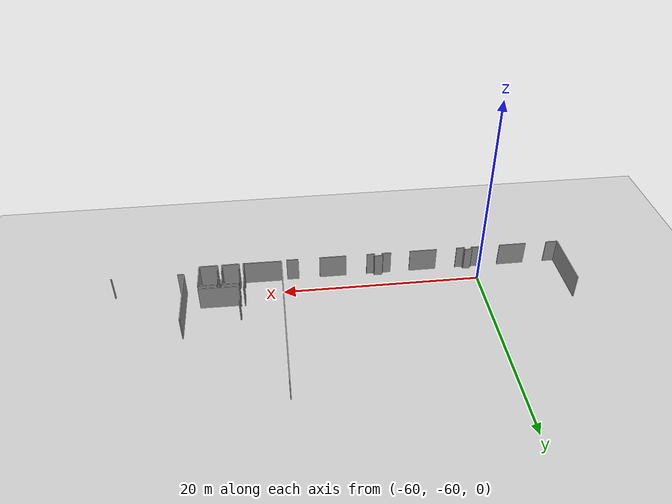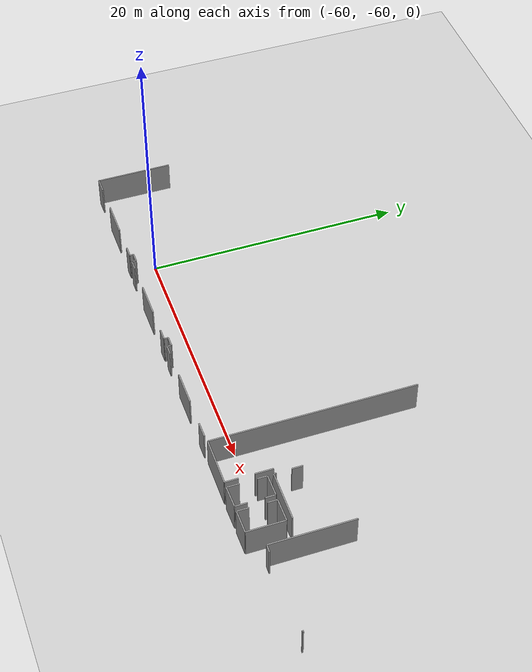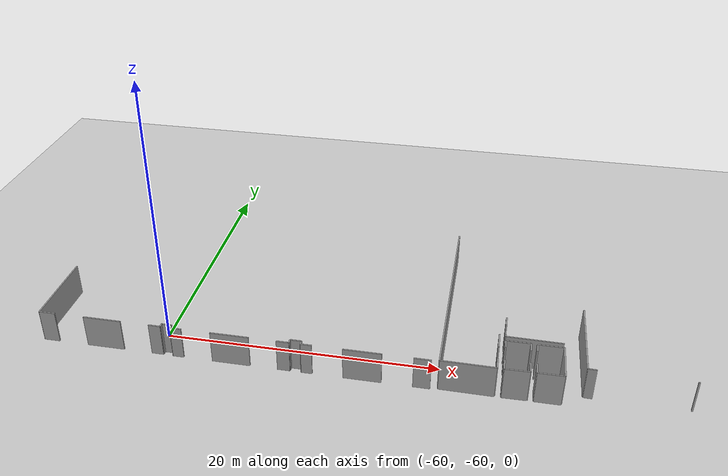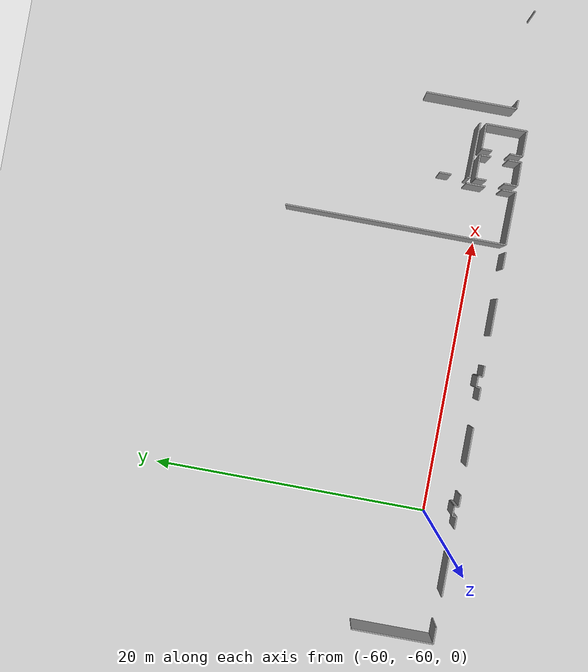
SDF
<sdf version="1.6">
 <world name="default">
  <model name="ground_plane">
   <static>1</static>
   <link name="link">
    <collision name="collision">
     <geometry><plane><normal>0 0 1</normal><size>100 100</size></plane></geometry>
     <surface><friction><ode><mu>100</mu><mu2>50</mu2></ode></friction></surface>
    </collision>
    <visual name="visual">
     <cast_shadows>0</cast_shadows>
     <geometry><plane><normal>0 0 1</normal><size>100 100</size></plane></geometry>
     <material>
      <script><uri>file://media/materials/scripts/gazebo.material</uri><name>Gazebo/Grey</name></script>
     </material>
    </visual>
   </link>
  </model>
  <model name="50036894">
   <static>1</static>
   <link name="Wall_40">
    <collision name="Wall_40_Collision">
     <geometry><box><size>1.2051049585 0.1 2.5</size></box></geometry>
     <pose>0.602552479252 0 1.25 0 0 0</pose>
    </collision>
    <visual name="Wall_40_Visual">
     <pose>0.602552479252 0 1.25 0 0 0</pose>
     <geometry><box><size>1.2051049585 0.1 2.5</size></box></geometry>
     <material>
      <script><uri>file://media/materials/scripts/gazebo.material</uri><name>Gazebo/Grey</name></script>
      <ambient>1 1 1 1</ambient>
     </material>
    </visual>
    <pose>82.3399628477 -129.412092894 0 0 0 3.14159265359</pose>
   </link>
   <link name="Wall_41">
    <collision name="Wall_41_Collision">
     <geometry><box><size>2.71351495286 0.1 2.5</size></box></geometry>
     <pose>1.35675747643 0 1.25 0 0 0</pose>
    </collision>
    <visual name="Wall_41_Visual">
     <pose>1.35675747643 0 1.25 0 0 0</pose>
     <geometry><box><size>2.71351495286 0.1 2.5</size></box></geometry>
     <material>
      <script><uri>file://media/materials/scripts/gazebo.material</uri><name>Gazebo/Grey</name></script>
      <ambient>1 1 1 1</ambient>
     </material>
    </visual>
    <pose>78.9792618986 -129.412092894 0 0 0 3.14159265359</pose>
   </link>
   <link name="Wall_42">
    <collision name="Wall_42_Collision">
     <geometry><box><size>0.786158537745 0.1 2.5</size></box></geometry>
     <pose>0.393079268873 0 1.25 0 0 0</pose>
    </collision>
    <visual name="Wall_42_Visual">
     <pose>0.393079268873 0 1.25 0 0 0</pose>
     <geometry><box><size>0.786158537745 0.1 2.5</size></box></geometry>
     <material>
      <script><uri>file://media/materials/scripts/gazebo.material</uri><name>Gazebo/Grey</name></script>
      <ambient>1 1 1 1</ambient>
     </material>
    </visual>
    <pose>74.1101509551 -129.412092894 0 0 0 3.14159265359</pose>
   </link>
   <link name="Wall_43">
    <collision name="Wall_43_Collision">
     <geometry><box><size>0.3261289934 0.1 2.5</size></box></geometry>
     <pose>0.1630644967 0 1.25 0 0 0</pose>
    </collision>
    <visual name="Wall_43_Visual">
     <pose>0.1630644967 0 1.25 0 0 0</pose>
     <geometry><box><size>0.3261289934 0.1 2.5</size></box></geometry>
     <material>
      <script><uri>file://media/materials/scripts/gazebo.material</uri><name>Gazebo/Grey</name></script>
      <ambient>1 1 1 1</ambient>
     </material>
    </visual>
    <pose>73.3239924174 -129.412092894 0 0 0 1.57079632679</pose>
   </link>
   <link name="Wall_44">
    <collision name="Wall_44_Collision">
     <geometry><box><size>0.811518490576 0.1 2.5</size></box></geometry>
     <pose>0.405759245288 0 1.25 0 0 0</pose>
    </collision>
    <visual name="Wall_44_Visual">
     <pose>0.405759245288 0 1.25 0 0 0</pose>
     <geometry><box><size>0.811518490576 0.1 2.5</size></box></geometry>
     <material>
      <script><uri>file://media/materials/scripts/gazebo.material</uri><name>Gazebo/Grey</name></script>
      <ambient>1 1 1 1</ambient>
     </material>
    </visual>
    <pose>73.3239924174 -129.0859639 0 0 0 3.14159265359</pose>
   </link>
   <link name="Wall_45">
    <collision name="Wall_45_Collision">
     <geometry><box><size>0.329679386796 0.1 2.5</size></box></geometry>
     <pose>0.164839693398 0 1.25 0 0 0</pose>
    </collision>
    <visual name="Wall_45_Visual">
     <pose>0.164839693398 0 1.25 0 0 0</pose>
     <geometry><box><size>0.329679386796 0.1 2.5</size></box></geometry>
     <material>
      <script><uri>file://media/materials/scripts/gazebo.material</uri><name>Gazebo/Grey</name></script>
      <ambient>1 1 1 1</ambient>
     </material>
    </visual>
    <pose>72.5124739268 -129.0859639 0 0 0 -1.57079632679</pose>
   </link>
   <link name="Wall_46">
    <collision name="Wall_46_Collision">
     <geometry><box><size>0.912958301898 0.1 2.5</size></box></geometry>
     <pose>0.456479150949 0 1.25 0 0 0</pose>
    </collision>
    <visual name="Wall_46_Visual">
     <pose>0.456479150949 0 1.25 0 0 0</pose>
     <geometry><box><size>0.912958301898 0.1 2.5</size></box></geometry>
     <material>
      <script><uri>file://media/materials/scripts/gazebo.material</uri><name>Gazebo/Grey</name></script>
      <ambient>1 1 1 1</ambient>
     </material>
    </visual>
    <pose>72.5124739268 -129.415643287 0 0 0 3.14159265359</pose>
   </link>
   <link name="Wall_47">
    <collision name="Wall_47_Collision">
     <geometry><box><size>2.79644199862 0.1 2.5</size></box></geometry>
     <pose>1.39822099931 0 1.25 0 0 0</pose>
    </collision>
    <visual name="Wall_47_Visual">
     <pose>1.39822099931 0 1.25 0 0 0</pose>
     <geometry><box><size>2.79644199862 0.1 2.5</size></box></geometry>
     <material>
      <script><uri>file://media/materials/scripts/gazebo.material</uri><name>Gazebo/Grey</name></script>
      <ambient>1 1 1 1</ambient>
     </material>
    </visual>
    <pose>69.6214393041 -129.415643287 0 0 0 3.14159265359</pose>
   </link>
   <link name="Wall_48">
    <collision name="Wall_48_Collision">
     <geometry><box><size>0.819633675481 0.1 2.5</size></box></geometry>
     <pose>0.409816837741 0 1.25 0 0 0</pose>
    </collision>
    <visual name="Wall_48_Visual">
     <pose>0.409816837741 0 1.25 0 0 0</pose>
     <geometry><box><size>0.819633675481 0.1 2.5</size></box></geometry>
     <material>
      <script><uri>file://media/materials/scripts/gazebo.material</uri><name>Gazebo/Grey</name></script>
      <ambient>1 1 1 1</ambient>
     </material>
    </visual>
    <pose>64.7158100286 -129.415643287 0 0 0 3.14159265359</pose>
   </link>
   <link name="Wall_49">
    <collision name="Wall_49_Collision">
     <geometry><box><size>0.328664988683 0.1 2.5</size></box></geometry>
     <pose>0.164332494342 0 1.25 0 0 0</pose>
    </collision>
    <visual name="Wall_49_Visual">
     <pose>0.164332494342 0 1.25 0 0 0</pose>
     <geometry><box><size>0.328664988683 0.1 2.5</size></box></geometry>
     <material>
      <script><uri>file://media/materials/scripts/gazebo.material</uri><name>Gazebo/Grey</name></script>
      <ambient>1 1 1 1</ambient>
     </material>
    </visual>
    <pose>63.8961763531 -129.415643287 0 0 0 1.57079632679</pose>
   </link>
   <link name="Wall_50">
    <collision name="Wall_50_Collision">
     <geometry><box><size>0.731381039631 0.1 2.5</size></box></geometry>
     <pose>0.365690519816 0 1.25 0 0 0</pose>
    </collision>
    <visual name="Wall_50_Visual">
     <pose>0.365690519816 0 1.25 0 0 0</pose>
     <geometry><box><size>0.731381039631 0.1 2.5</size></box></geometry>
     <material>
      <script><uri>file://media/materials/scripts/gazebo.material</uri><name>Gazebo/Grey</name></script>
      <ambient>1 1 1 1</ambient>
     </material>
    </visual>
    <pose>63.8961763531 -129.086978298 0 0 0 3.14159265359</pose>
   </link>
   <link name="Wall_51">
    <collision name="Wall_51_Collision">
     <geometry><box><size>0.302797836796 0.1 2.5</size></box></geometry>
     <pose>0.151398918398 0 1.25 0 0 0</pose>
    </collision>
    <visual name="Wall_51_Visual">
     <pose>0.151398918398 0 1.25 0 0 0</pose>
     <geometry><box><size>0.302797836796 0.1 2.5</size></box></geometry>
     <material>
      <script><uri>file://media/materials/scripts/gazebo.material</uri><name>Gazebo/Grey</name></script>
      <ambient>1 1 1 1</ambient>
     </material>
    </visual>
    <pose>63.1647953135 -129.086978298 0 0 0 -1.57079632679</pose>
   </link>
   <link name="Wall_52">
    <collision name="Wall_52_Collision">
     <geometry><box><size>0.882526358501 0.1 2.5</size></box></geometry>
     <pose>0.44126317925 0 1.25 0 0 0</pose>
    </collision>
    <visual name="Wall_52_Visual">
     <pose>0.44126317925 0 1.25 0 0 0</pose>
     <geometry><box><size>0.882526358501 0.1 2.5</size></box></geometry>
     <material>
      <script><uri>file://media/materials/scripts/gazebo.material</uri><name>Gazebo/Grey</name></script>
      <ambient>1 1 1 1</ambient>
     </material>
    </visual>
    <pose>63.1647953135 -129.389776135 0 0 0 3.14159265359</pose>
   </link>
   <link name="Wall_53">
    <collision name="Wall_53_Collision">
     <geometry><box><size>2.82256275003 0.1 2.5</size></box></geometry>
     <pose>1.41128137502 0 1.25 0 0 0</pose>
    </collision>
    <visual name="Wall_53_Visual">
     <pose>1.41128137502 0 1.25 0 0 0</pose>
     <geometry><box><size>2.82256275003 0.1 2.5</size></box></geometry>
     <material>
      <script><uri>file://media/materials/scripts/gazebo.material</uri><name>Gazebo/Grey</name></script>
      <ambient>1 1 1 1</ambient>
     </material>
    </visual>
    <pose>60.1786608677 -129.389776135 0 0 0 3.14159265359</pose>
   </link>
   <link name="Wall_54">
    <collision name="Wall_54_Collision">
     <geometry><box><size>1.19090338492 0.1 2.5</size></box></geometry>
     <pose>0.59545169246 0 1.25 0 0 0</pose>
    </collision>
    <visual name="Wall_54_Visual">
     <pose>0.59545169246 0 1.25 0 0 0</pose>
     <geometry><box><size>1.19090338492 0.1 2.5</size></box></geometry>
     <material>
      <script><uri>file://media/materials/scripts/gazebo.material</uri><name>Gazebo/Grey</name></script>
      <ambient>1 1 1 1</ambient>
     </material>
    </visual>
    <pose>55.1507966195 -129.389776135 0 0 0 3.14159265359</pose>
   </link>
   <link name="Wall_55">
    <collision name="Wall_55_Collision">
     <geometry><box><size>5.94817693639 0.1 2.5</size></box></geometry>
     <pose>2.9740884682 0 1.25 0 0 0</pose>
    </collision>
    <visual name="Wall_55_Visual">
     <pose>2.9740884682 0 1.25 0 0 0</pose>
     <geometry><box><size>5.94817693639 0.1 2.5</size></box></geometry>
     <material>
      <script><uri>file://media/materials/scripts/gazebo.material</uri><name>Gazebo/Grey</name></script>
      <ambient>1 1 1 1</ambient>
     </material>
    </visual>
    <pose>53.9598932346 -129.389776135 0 0 0 1.57079632679</pose>
   </link>
   <link name="Wall_146">
    <collision name="Wall_146_Collision">
     <geometry><box><size>15.9678942997 0.1 2.5</size></box></geometry>
     <pose>7.98394714986 0 1.25 0 0 0</pose>
    </collision>
    <visual name="Wall_146_Visual">
     <pose>7.98394714986 0 1.25 0 0 0</pose>
     <geometry><box><size>15.9678942997 0.1 2.5</size></box></geometry>
     <material>
      <script><uri>file://media/materials/scripts/gazebo.material</uri><name>Gazebo/Grey</name></script>
      <ambient>1 1 1 1</ambient>
     </material>
    </visual>
    <pose>82.8603490798 -129.32231866 0 0 0 1.57079632679</pose>
   </link>
   <link name="Wall_154">
    <collision name="Wall_154_Collision">
     <geometry><box><size>1.38135663068 0.1 2.5</size></box></geometry>
     <pose>0.690678315338 0 1.25 0 0 0</pose>
    </collision>
    <visual name="Wall_154_Visual">
     <pose>0.690678315338 0 1.25 0 0 0</pose>
     <geometry><box><size>1.38135663068 0.1 2.5</size></box></geometry>
     <material>
      <script><uri>file://media/materials/scripts/gazebo.material</uri><name>Gazebo/Grey</name></script>
      <ambient>1 1 1 1</ambient>
     </material>
    </visual>
    <pose>86.675246784 -125.757470091 0 0 0 -1.57079632679</pose>
   </link>
   <link name="Wall_155">
    <collision name="Wall_155_Collision">
     <geometry><box><size>1.01617330992 0.1 2.5</size></box></geometry>
     <pose>0.508086654959 0 1.25 0 0 0</pose>
    </collision>
    <visual name="Wall_155_Visual">
     <pose>0.508086654959 0 1.25 0 0 0</pose>
     <geometry><box><size>1.01617330992 0.1 2.5</size></box></geometry>
     <material>
      <script><uri>file://media/materials/scripts/gazebo.material</uri><name>Gazebo/Grey</name></script>
      <ambient>1 1 1 1</ambient>
     </material>
    </visual>
    <pose>86.675246784 -128.338352491 0 0 0 -1.57079632679</pose>
   </link>
   <link name="Wall_156">
    <collision name="Wall_156_Collision">
     <geometry><box><size>3.81503365569 0.1 2.5</size></box></geometry>
     <pose>1.90751682785 0 1.25 0 0 0</pose>
    </collision>
    <visual name="Wall_156_Visual">
     <pose>1.90751682785 0 1.25 0 0 0</pose>
     <geometry><box><size>3.81503365569 0.1 2.5</size></box></geometry>
     <material>
      <script><uri>file://media/materials/scripts/gazebo.material</uri><name>Gazebo/Grey</name></script>
      <ambient>1 1 1 1</ambient>
     </material>
    </visual>
    <pose>86.675246784 -129.354525801 0 0 0 3.13315038923</pose>
   </link>
   <link name="Wall_167">
    <collision name="Wall_167_Collision">
     <geometry><box><size>0.202879622644 0.1 2.5</size></box></geometry>
     <pose>0.101439811322 0 1.25 0 0 0</pose>
    </collision>
    <visual name="Wall_167_Visual">
     <pose>0.101439811322 0 1.25 0 0 0</pose>
     <geometry><box><size>0.202879622644 0.1 2.5</size></box></geometry>
     <material>
      <script><uri>file://media/materials/scripts/gazebo.material</uri><name>Gazebo/Grey</name></script>
      <ambient>1 1 1 1</ambient>
     </material>
    </visual>
    <pose>87.0944468043 -125.914701799 0 0 0 1.57079632679</pose>
   </link>
   <link name="Wall_168">
    <collision name="Wall_168_Collision">
     <geometry><box><size>0.832060052368 0.1 2.5</size></box></geometry>
     <pose>0.416030026184 0 1.25 0 0 0</pose>
    </collision>
    <visual name="Wall_168_Visual">
     <pose>0.416030026184 0 1.25 0 0 0</pose>
     <geometry><box><size>0.832060052368 0.1 2.5</size></box></geometry>
     <material>
      <script><uri>file://media/materials/scripts/gazebo.material</uri><name>Gazebo/Grey</name></script>
      <ambient>1 1 1 1</ambient>
     </material>
    </visual>
    <pose>87.0944468043 -124.58584027 0 0 0 1.57079632679</pose>
   </link>
   <link name="Wall_171">
    <collision name="Wall_171_Collision">
     <geometry><box><size>3.98557510844 0.1 2.5</size></box></geometry>
     <pose>1.99278755422 0 1.25 0 0 0</pose>
    </collision>
    <visual name="Wall_171_Visual">
     <pose>1.99278755422 0 1.25 0 0 0</pose>
     <geometry><box><size>3.98557510844 0.1 2.5</size></box></geometry>
     <material>
      <script><uri>file://media/materials/scripts/gazebo.material</uri><name>Gazebo/Grey</name></script>
      <ambient>1 1 1 1</ambient>
     </material>
    </visual>
    <pose>91.0797633916 -125.960096114 0 0 0 3.13020275481</pose>
   </link>
   <link name="Wall_172">
    <collision name="Wall_172_Collision">
     <geometry><box><size>0.945672641049 0.1 2.5</size></box></geometry>
     <pose>0.472836320524 0 1.25 0 0 0</pose>
    </collision>
    <visual name="Wall_172_Visual">
     <pose>0.472836320524 0 1.25 0 0 0</pose>
     <geometry><box><size>0.945672641049 0.1 2.5</size></box></geometry>
     <material>
      <script><uri>file://media/materials/scripts/gazebo.material</uri><name>Gazebo/Grey</name></script>
      <ambient>1 1 1 1</ambient>
     </material>
    </visual>
    <pose>87.1335011317 -129.364416182 0 0 0 1.57079632679</pose>
   </link>
   <link name="Wall_173">
    <collision name="Wall_173_Collision">
     <geometry><box><size>0.75395139765 0.1 2.5</size></box></geometry>
     <pose>0.376975698825 0 1.25 0 0 0</pose>
    </collision>
    <visual name="Wall_173_Visual">
     <pose>0.376975698825 0 1.25 0 0 0</pose>
     <geometry><box><size>0.75395139765 0.1 2.5</size></box></geometry>
     <material>
      <script><uri>file://media/materials/scripts/gazebo.material</uri><name>Gazebo/Grey</name></script>
      <ambient>1 1 1 1</ambient>
     </material>
    </visual>
    <pose>87.1335011317 -127.11828516 0 0 0 1.57079632679</pose>
   </link>
   <link name="Wall_174">
    <collision name="Wall_174_Collision">
     <geometry><box><size>1.71534720945 0.1 2.5</size></box></geometry>
     <pose>0.857673604727 0 1.25 0 0 0</pose>
    </collision>
    <visual name="Wall_174_Visual">
     <pose>0.857673604727 0 1.25 0 0 0</pose>
     <geometry><box><size>1.71534720945 0.1 2.5</size></box></geometry>
     <material>
      <script><uri>file://media/materials/scripts/gazebo.material</uri><name>Gazebo/Grey</name></script>
      <ambient>1 1 1 1</ambient>
     </material>
    </visual>
    <pose>87.1335011317 -126.364333762 0 0 0 0.0</pose>
   </link>
   <link name="Wall_175">
    <collision name="Wall_175_Collision">
     <geometry><box><size>0.782861743877 0.1 2.5</size></box></geometry>
     <pose>0.391430871939 0 1.25 0 0 0</pose>
    </collision>
    <visual name="Wall_175_Visual">
     <pose>0.391430871939 0 1.25 0 0 0</pose>
     <geometry><box><size>0.782861743877 0.1 2.5</size></box></geometry>
     <material>
      <script><uri>file://media/materials/scripts/gazebo.material</uri><name>Gazebo/Grey</name></script>
      <ambient>1 1 1 1</ambient>
     </material>
    </visual>
    <pose>88.8488483411 -126.364333762 0 0 0 -1.57079632679</pose>
   </link>
   <link name="Wall_176">
    <collision name="Wall_176_Collision">
     <geometry><box><size>0.928174273596 0.1 2.5</size></box></geometry>
     <pose>0.464087136798 0 1.25 0 0 0</pose>
    </collision>
    <visual name="Wall_176_Visual">
     <pose>0.464087136798 0 1.25 0 0 0</pose>
     <geometry><box><size>0.928174273596 0.1 2.5</size></box></geometry>
     <material>
      <script><uri>file://media/materials/scripts/gazebo.material</uri><name>Gazebo/Grey</name></script>
      <ambient>1 1 1 1</ambient>
     </material>
    </visual>
    <pose>88.8488483411 -128.40859956 0 0 0 -1.57079632679</pose>
   </link>
   <link name="Wall_177">
    <collision name="Wall_177_Collision">
     <geometry><box><size>1.71556991942 0.1 2.5</size></box></geometry>
     <pose>0.85778495971 0 1.25 0 0 0</pose>
    </collision>
    <visual name="Wall_177_Visual">
     <pose>0.85778495971 0 1.25 0 0 0</pose>
     <geometry><box><size>1.71556991942 0.1 2.5</size></box></geometry>
     <material>
      <script><uri>file://media/materials/scripts/gazebo.material</uri><name>Gazebo/Grey</name></script>
      <ambient>1 1 1 1</ambient>
     </material>
    </visual>
    <pose>88.8488483411 -129.336773834 0 0 0 -3.12547932327</pose>
   </link>
   <link name="Wall_178">
    <collision name="Wall_178_Collision">
     <geometry><box><size>0.900531925011 0.1 2.5</size></box></geometry>
     <pose>0.450265962505 0 1.25 0 0 0</pose>
    </collision>
    <visual name="Wall_178_Visual">
     <pose>0.450265962505 0 1.25 0 0 0</pose>
     <geometry><box><size>0.900531925011 0.1 2.5</size></box></geometry>
     <material>
      <script><uri>file://media/materials/scripts/gazebo.material</uri><name>Gazebo/Grey</name></script>
      <ambient>1 1 1 1</ambient>
     </material>
    </visual>
    <pose>89.2764171459 -129.345396218 0 0 0 1.57079632679</pose>
   </link>
   <link name="Wall_179">
    <collision name="Wall_179_Collision">
     <geometry><box><size>0.743807416518 0.1 2.5</size></box></geometry>
     <pose>0.371903708259 0 1.25 0 0 0</pose>
    </collision>
    <visual name="Wall_179_Visual">
     <pose>0.371903708259 0 1.25 0 0 0</pose>
     <geometry><box><size>0.743807416518 0.1 2.5</size></box></geometry>
     <material>
      <script><uri>file://media/materials/scripts/gazebo.material</uri><name>Gazebo/Grey</name></script>
      <ambient>1 1 1 1</ambient>
     </material>
    </visual>
    <pose>89.2764171459 -127.132740333 0 0 0 1.57079632679</pose>
   </link>
   <link name="Wall_180">
    <collision name="Wall_180_Collision">
     <geometry><box><size>1.81602622219 0.1 2.5</size></box></geometry>
     <pose>0.908013111096 0 1.25 0 0 0</pose>
    </collision>
    <visual name="Wall_180_Visual">
     <pose>0.908013111096 0 1.25 0 0 0</pose>
     <geometry><box><size>1.81602622219 0.1 2.5</size></box></geometry>
     <material>
      <script><uri>file://media/materials/scripts/gazebo.material</uri><name>Gazebo/Grey</name></script>
      <ambient>1 1 1 1</ambient>
     </material>
    </visual>
    <pose>89.2764171459 -126.388932917 0 0 0 0.0</pose>
   </link>
   <link name="Wall_181">
    <collision name="Wall_181_Collision">
     <geometry><box><size>2.9503769123 0.1 2.5</size></box></geometry>
     <pose>1.47518845615 0 1.25 0 0 0</pose>
    </collision>
    <visual name="Wall_181_Visual">
     <pose>1.47518845615 0 1.25 0 0 0</pose>
     <geometry><box><size>2.9503769123 0.1 2.5</size></box></geometry>
     <material>
      <script><uri>file://media/materials/scripts/gazebo.material</uri><name>Gazebo/Grey</name></script>
      <ambient>1 1 1 1</ambient>
     </material>
    </visual>
    <pose>91.0924433681 -126.388932917 0 0 0 -1.57079632679</pose>
   </link>
   <link name="Wall_182">
    <collision name="Wall_182_Collision">
     <geometry><box><size>1.81603642139 0.1 2.5</size></box></geometry>
     <pose>0.908018210695 0 1.25 0 0 0</pose>
    </collision>
    <visual name="Wall_182_Visual">
     <pose>0.908018210695 0 1.25 0 0 0</pose>
     <geometry><box><size>1.81603642139 0.1 2.5</size></box></geometry>
     <material>
      <script><uri>file://media/materials/scripts/gazebo.material</uri><name>Gazebo/Grey</name></script>
      <ambient>1 1 1 1</ambient>
     </material>
    </visual>
    <pose>91.0924433681 -129.339309829 0 0 0 -3.13824117892</pose>
   </link>
   <link name="Wall_213">
    <collision name="Wall_213_Collision">
     <geometry><box><size>6.51218228734 0.1 2.5</size></box></geometry>
     <pose>3.25609114367 0 1.25 0 0 0</pose>
    </collision>
    <visual name="Wall_213_Visual">
     <pose>3.25609114367 0 1.25 0 0 0</pose>
     <geometry><box><size>6.51218228734 0.1 2.5</size></box></geometry>
     <material>
      <script><uri>file://media/materials/scripts/gazebo.material</uri><name>Gazebo/Grey</name></script>
      <ambient>1 1 1 1</ambient>
     </material>
    </visual>
    <pose>92.5448078667 -128.311470941 0 0 0 1.57079632679</pose>
   </link>
   <link name="Wall_217">
    <collision name="Wall_217_Collision">
     <geometry><box><size>0.112851790096 0.1 2.5</size></box></geometry>
     <pose>0.0564258950478 0 1.25 0 0 0</pose>
    </collision>
    <visual name="Wall_217_Visual">
     <pose>0.0564258950478 0 1.25 0 0 0</pose>
     <geometry><box><size>0.112851790096 0.1 2.5</size></box></geometry>
     <material>
      <script><uri>file://media/materials/scripts/gazebo.material</uri><name>Gazebo/Grey</name></script>
      <ambient>1 1 1 1</ambient>
     </material>
    </visual>
    <pose>99.6293642894 -128.333787699 0 0 0 3.14159265359</pose>
   </link>
   <link name="Wall_218">
    <collision name="Wall_218_Collision">
     <geometry><box><size>0.616650810836 0.1 2.5</size></box></geometry>
     <pose>0.308325405418 0 1.25 0 0 0</pose>
    </collision>
    <visual name="Wall_218_Visual">
     <pose>0.308325405418 0 1.25 0 0 0</pose>
     <geometry><box><size>0.616650810836 0.1 2.5</size></box></geometry>
     <material>
      <script><uri>file://media/materials/scripts/gazebo.material</uri><name>Gazebo/Grey</name></script>
      <ambient>1 1 1 1</ambient>
     </material>
    </visual>
    <pose>93.1610547204 -128.333787699 0 0 0 3.10539448036</pose>
   </link>
   <pose>-122.8 67.3347215794 0 0 0 0</pose>
  </model>
 </world>
</sdf>
